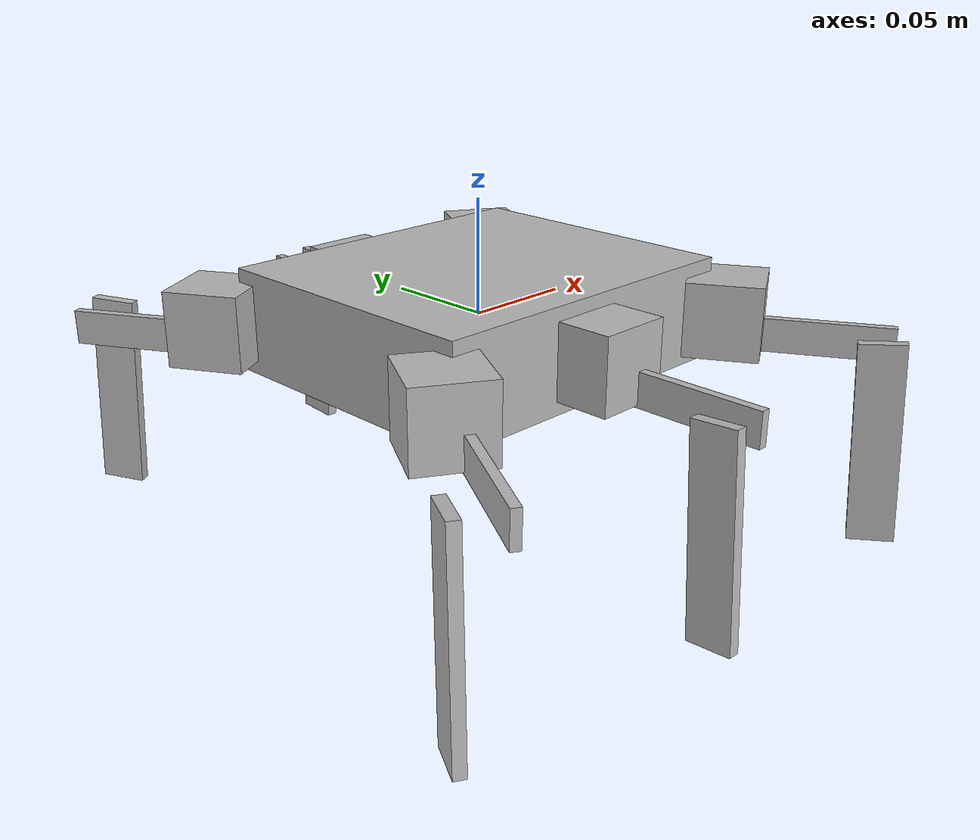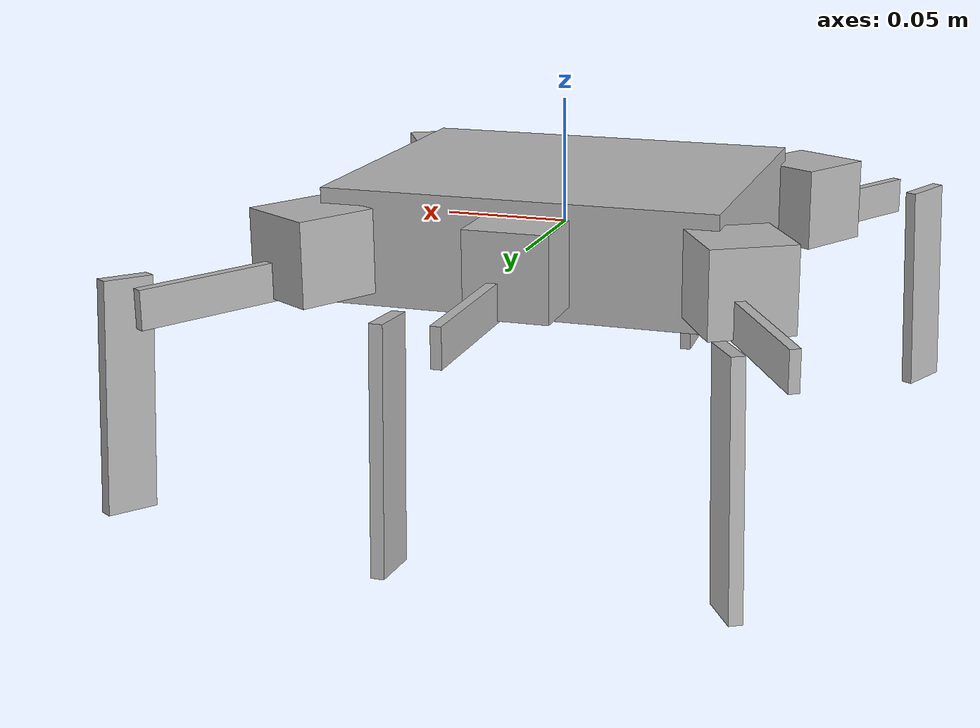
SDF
<sdf version='1.7'>
  <model name='hexapod'>
    <link name='base_link'>
      <inertial>
        <pose>0 -0 0 0 -0 0</pose>
        <mass>0.0306</mass>
        <inertia>
          <ixx>5.74625e-05</ixx>
          <ixy>0</ixy>
          <ixz>0</ixz>
          <iyy>7.4745e-05</iyy>
          <iyz>0</iyz>
          <izz>0.000122072</izz>
        </inertia>
      </inertial>
      <collision name='base_link_collision'>
        <pose>0 0 0 0 -0 0</pose>
        <geometry>
          <box>
            <size>0.155 0.13 0.045</size>
          </box>
        </geometry>
        <surface>
          <contact>
            <ode>
              <kp>1000</kp>
              <kd>1000</kd>
            </ode>
          </contact>
          <friction>
            <ode>
              <mu>1e+06</mu>
              <mu2>1e+06</mu2>
            </ode>
          </friction>
        </surface>
      </collision>
      <collision name='base_link_fixed_joint_lump__thorax_collision_1'>
        <pose>0 0 0 0 -0 0</pose>
        <geometry>
          <box>
            <size>0.155 0.13 0.045</size>
          </box>
        </geometry>
      </collision>
      <visual name='base_link_fixed_joint_lump__thorax_visual'>
        <pose>0 0 0 0 -0 0</pose>
        <geometry>
          <box>
            <size>0.155 0.13 0.045</size>
          </box>
        </geometry>
      </visual>
      <sensor name='contactsensor_sensor' type='contact'>
        <always_on>1</always_on>
        <contact>
          <collision>base_link_fixed_joint_lump__thorax_collision_1</collision>
          <topic>__default_topic__</topic>
        </contact>
        <plugin name='bumper0_plugin' filename='libgazebo_ros_bumper.so'>
          <bumperTopicName>contactsensor_state</bumperTopicName>
          <frameName>contactsensor_link</frameName>
        </plugin>
      </sensor>
    </link>
    <joint name='coxa_joint_l1' type='revolute'>
      <pose relative_to='base_link'>0.0775 0.065 0 0 -0 1.0472</pose>
      <parent>base_link</parent>
      <child>coxa_l1</child>
      <axis>
        <xyz>0 0 -1</xyz>
        <limit>
          <lower>-1.5</lower>
          <upper>1.5</upper>
          <effort>0.274586</effort>
          <velocity>3.1998e-05</velocity>
        </limit>
        <dynamics>
          <spring_reference>0</spring_reference>
          <spring_stiffness>0</spring_stiffness>
        </dynamics>
      </axis>
    </joint>
    <link name='coxa_l1'>
      <pose relative_to='coxa_joint_l1'>0 0 0 0 -0 0</pose>
      <inertial>
        <pose>0.008 0.005 0 0 -0 0</pose>
        <mass>0.01</mass>
        <inertia>
          <ixx>1.815e-06</ixx>
          <ixy>0</ixy>
          <ixz>0</ixz>
          <iyy>1.815e-06</iyy>
          <iyz>0</iyz>
          <izz>1.815e-06</izz>
        </inertia>
      </inertial>
      <collision name='coxa_l1_collision'>
        <pose>0.008 0.005 0 0 -0 0</pose>
        <geometry>
          <box>
            <size>0.033 0.033 0.033</size>
          </box>
        </geometry>
      </collision>
      <visual name='coxa_l1_visual'>
        <pose>0.008 0.005 0 0 -0 0</pose>
        <geometry>
          <box>
            <size>0.033 0.033 0.033</size>
          </box>
        </geometry>
      </visual>
    </link>
    <joint name='femur_joint_l1' type='revolute'>
      <pose relative_to='coxa_l1'>0.01 0 -0.01 -1.5708 0 0</pose>
      <parent>coxa_l1</parent>
      <child>femur_l1</child>
      <axis>
        <xyz>0 0 -1</xyz>
        <limit>
          <lower>-1.5</lower>
          <upper>1.5</upper>
          <effort>0.274586</effort>
          <velocity>3.1998e-05</velocity>
        </limit>
        <dynamics>
          <spring_reference>0</spring_reference>
          <spring_stiffness>0</spring_stiffness>
        </dynamics>
      </axis>
    </joint>
    <link name='femur_l1'>
      <pose relative_to='femur_joint_l1'>0 0 0 0 -0 0</pose>
      <inertial>
        <pose>0.035 0 0 0 -0 0</pose>
        <mass>0.01</mass>
        <inertia>
          <ixx>1.22167e-06</ixx>
          <ixy>0</ixy>
          <ixz>0</ixz>
          <iyy>5.1175e-06</iyy>
          <iyz>0</iyz>
          <izz>5.29167e-06</izz>
        </inertia>
      </inertial>
      <collision name='femur_l1_collision'>
        <pose>0.035 0 0 0 -0 0</pose>
        <geometry>
          <box>
            <size>0.07 0.015 0.004</size>
          </box>
        </geometry>
        <surface>
          <contact>
            <ode>
              <kp>1e+08</kp>
              <kd>1</kd>
              <min_depth>0.001</min_depth>
            </ode>
          </contact>
          <friction>
            <ode>
              <mu>10000.9</mu>
              <mu2>10000.9</mu2>
            </ode>
          </friction>
        </surface>
      </collision>
      <visual name='femur_l1_visual'>
        <pose>0.035 0 0 0 -0 0</pose>
        <geometry>
          <box>
            <size>0.07 0.015 0.004</size>
          </box>
        </geometry>
      </visual>
    </link>
    <joint name='tibia_joint_l1' type='revolute'>
      <pose relative_to='femur_l1'>0.066 0 0 3.14159 -0 1.5708</pose>
      <parent>femur_l1</parent>
      <child>tibia_l1</child>
      <axis>
        <xyz>0 0 1</xyz>
        <limit>
          <lower>-1.5</lower>
          <upper>1.5</upper>
          <effort>0.274586</effort>
          <velocity>3.1998e-05</velocity>
        </limit>
        <dynamics>
          <spring_reference>0</spring_reference>
          <spring_stiffness>0</spring_stiffness>
        </dynamics>
      </axis>
    </joint>
    <link name='tibia_l1'>
      <pose relative_to='tibia_joint_l1'>0 0 0 0 -0 0</pose>
      <inertial>
        <pose>0.038 0 0.02 0 -0 0.06</pose>
        <mass>0.01</mass>
        <inertia>
          <ixx>2.04167e-06</ixx>
          <ixy>0</ixy>
          <ixz>0</ixz>
          <iyy>8.45833e-06</iyy>
          <iyz>0</iyz>
          <izz>8.77083e-06</izz>
        </inertia>
      </inertial>
      <collision name='tibia_l1_collision_collision'>
        <pose>0.038 0 0.02 0 -0 0.06</pose>
        <geometry>
          <box>
            <size>0.09 0.02 0.005</size>
          </box>
        </geometry>
      </collision>
      <visual name='tibia_l1_visual'>
        <pose>0.038 0 0.02 0 -0 0.06</pose>
        <geometry>
          <box>
            <size>0.09 0.02 0.005</size>
          </box>
        </geometry>
      </visual>
    </link>
    <joint name='coxa_joint_l2' type='revolute'>
      <pose relative_to='base_link'>0 0.065 0 0 -0 1.5708</pose>
      <parent>base_link</parent>
      <child>coxa_l2</child>
      <axis>
        <xyz>0 0 -1</xyz>
        <limit>
          <lower>-1.5</lower>
          <upper>1.5</upper>
          <effort>0.274586</effort>
          <velocity>3.1998e-05</velocity>
        </limit>
        <dynamics>
          <spring_reference>0</spring_reference>
          <spring_stiffness>0</spring_stiffness>
        </dynamics>
      </axis>
    </joint>
    <link name='coxa_l2'>
      <pose relative_to='coxa_joint_l2'>0 0 0 0 -0 0</pose>
      <inertial>
        <pose>0.008 0.005 0 0 -0 0</pose>
        <mass>0.01</mass>
        <inertia>
          <ixx>1.815e-06</ixx>
          <ixy>0</ixy>
          <ixz>0</ixz>
          <iyy>1.815e-06</iyy>
          <iyz>0</iyz>
          <izz>1.815e-06</izz>
        </inertia>
      </inertial>
      <collision name='coxa_l2_collision'>
        <pose>0.008 0.005 0 0 -0 0</pose>
        <geometry>
          <box>
            <size>0.033 0.033 0.033</size>
          </box>
        </geometry>
      </collision>
      <visual name='coxa_l2_visual'>
        <pose>0.008 0.005 0 0 -0 0</pose>
        <geometry>
          <box>
            <size>0.033 0.033 0.033</size>
          </box>
        </geometry>
      </visual>
    </link>
    <joint name='femur_joint_l2' type='revolute'>
      <pose relative_to='coxa_l2'>0.01 0 -0.01 -1.5708 0 0</pose>
      <parent>coxa_l2</parent>
      <child>femur_l2</child>
      <axis>
        <xyz>0 0 -1</xyz>
        <limit>
          <lower>-1.5</lower>
          <upper>1.5</upper>
          <effort>0.274586</effort>
          <velocity>3.1998e-05</velocity>
        </limit>
        <dynamics>
          <spring_reference>0</spring_reference>
          <spring_stiffness>0</spring_stiffness>
        </dynamics>
      </axis>
    </joint>
    <link name='femur_l2'>
      <pose relative_to='femur_joint_l2'>0 0 0 0 -0 0</pose>
      <inertial>
        <pose>0.035 0 0 0 -0 0</pose>
        <mass>0.01</mass>
        <inertia>
          <ixx>1.22167e-06</ixx>
          <ixy>0</ixy>
          <ixz>0</ixz>
          <iyy>5.1175e-06</iyy>
          <iyz>0</iyz>
          <izz>5.29167e-06</izz>
        </inertia>
      </inertial>
      <collision name='femur_l2_collision'>
        <pose>0.035 0 0 0 -0 0</pose>
        <geometry>
          <box>
            <size>0.07 0.015 0.004</size>
          </box>
        </geometry>
        <surface>
          <contact>
            <ode>
              <kp>1e+08</kp>
              <kd>1</kd>
              <min_depth>0.001</min_depth>
            </ode>
          </contact>
          <friction>
            <ode>
              <mu>10000.9</mu>
              <mu2>10000.9</mu2>
            </ode>
          </friction>
        </surface>
      </collision>
      <visual name='femur_l2_visual'>
        <pose>0.035 0 0 0 -0 0</pose>
        <geometry>
          <box>
            <size>0.07 0.015 0.004</size>
          </box>
        </geometry>
      </visual>
    </link>
    <joint name='tibia_joint_l2' type='revolute'>
      <pose relative_to='femur_l2'>0.066 0 0 3.14159 -0 1.5708</pose>
      <parent>femur_l2</parent>
      <child>tibia_l2</child>
      <axis>
        <xyz>0 0 1</xyz>
        <limit>
          <lower>-1.5</lower>
          <upper>1.5</upper>
          <effort>0.274586</effort>
          <velocity>3.1998e-05</velocity>
        </limit>
        <dynamics>
          <spring_reference>0</spring_reference>
          <spring_stiffness>0</spring_stiffness>
        </dynamics>
      </axis>
    </joint>
    <link name='tibia_l2'>
      <pose relative_to='tibia_joint_l2'>0 0 0 0 -0 0</pose>
      <inertial>
        <pose>0.038 0 0.02 0 -0 0.06</pose>
        <mass>0.01</mass>
        <inertia>
          <ixx>2.04167e-06</ixx>
          <ixy>0</ixy>
          <ixz>0</ixz>
          <iyy>8.45833e-06</iyy>
          <iyz>0</iyz>
          <izz>8.77083e-06</izz>
        </inertia>
      </inertial>
      <collision name='tibia_l2_collision_collision'>
        <pose>0.038 0 0.02 0 -0 0.06</pose>
        <geometry>
          <box>
            <size>0.09 0.02 0.005</size>
          </box>
        </geometry>
      </collision>
      <visual name='tibia_l2_visual'>
        <pose>0.038 0 0.02 0 -0 0.06</pose>
        <geometry>
          <box>
            <size>0.09 0.02 0.005</size>
          </box>
        </geometry>
      </visual>
    </link>
    <joint name='coxa_joint_l3' type='revolute'>
      <pose relative_to='base_link'>-0.0775 0.065 0 0 -0 2.0944</pose>
      <parent>base_link</parent>
      <child>coxa_l3</child>
      <axis>
        <xyz>0 0 -1</xyz>
        <limit>
          <lower>-1.5</lower>
          <upper>1.5</upper>
          <effort>0.274586</effort>
          <velocity>3.1998e-05</velocity>
        </limit>
        <dynamics>
          <spring_reference>0</spring_reference>
          <spring_stiffness>0</spring_stiffness>
        </dynamics>
      </axis>
    </joint>
    <link name='coxa_l3'>
      <pose relative_to='coxa_joint_l3'>0 0 0 0 -0 0</pose>
      <inertial>
        <pose>0.008 0.005 0 0 -0 0</pose>
        <mass>0.01</mass>
        <inertia>
          <ixx>1.815e-06</ixx>
          <ixy>0</ixy>
          <ixz>0</ixz>
          <iyy>1.815e-06</iyy>
          <iyz>0</iyz>
          <izz>1.815e-06</izz>
        </inertia>
      </inertial>
      <collision name='coxa_l3_collision'>
        <pose>0.008 0.005 0 0 -0 0</pose>
        <geometry>
          <box>
            <size>0.033 0.033 0.033</size>
          </box>
        </geometry>
      </collision>
      <visual name='coxa_l3_visual'>
        <pose>0.008 0.005 0 0 -0 0</pose>
        <geometry>
          <box>
            <size>0.033 0.033 0.033</size>
          </box>
        </geometry>
      </visual>
    </link>
    <joint name='femur_joint_l3' type='revolute'>
      <pose relative_to='coxa_l3'>0.01 0 -0.01 -1.5708 0 0</pose>
      <parent>coxa_l3</parent>
      <child>femur_l3</child>
      <axis>
        <xyz>0 0 -1</xyz>
        <limit>
          <lower>-1.5</lower>
          <upper>1.5</upper>
          <effort>0.274586</effort>
          <velocity>3.1998e-05</velocity>
        </limit>
        <dynamics>
          <spring_reference>0</spring_reference>
          <spring_stiffness>0</spring_stiffness>
        </dynamics>
      </axis>
    </joint>
    <link name='femur_l3'>
      <pose relative_to='femur_joint_l3'>0 0 0 0 -0 0</pose>
      <inertial>
        <pose>0.035 0 0 0 -0 0</pose>
        <mass>0.01</mass>
        <inertia>
          <ixx>1.22167e-06</ixx>
          <ixy>0</ixy>
          <ixz>0</ixz>
          <iyy>5.1175e-06</iyy>
          <iyz>0</iyz>
          <izz>5.29167e-06</izz>
        </inertia>
      </inertial>
      <collision name='femur_l3_collision'>
        <pose>0.035 0 0 0 -0 0</pose>
        <geometry>
          <box>
            <size>0.07 0.015 0.004</size>
          </box>
        </geometry>
        <surface>
          <contact>
            <ode>
              <kp>1e+08</kp>
              <kd>1</kd>
              <min_depth>0.001</min_depth>
            </ode>
          </contact>
          <friction>
            <ode>
              <mu>10000.9</mu>
              <mu2>10000.9</mu2>
            </ode>
          </friction>
        </surface>
      </collision>
      <visual name='femur_l3_visual'>
        <pose>0.035 0 0 0 -0 0</pose>
        <geometry>
          <box>
            <size>0.07 0.015 0.004</size>
          </box>
        </geometry>
      </visual>
    </link>
    <joint name='tibia_joint_l3' type='revolute'>
      <pose relative_to='femur_l3'>0.066 0 0 3.14159 -0 1.5708</pose>
      <parent>femur_l3</parent>
      <child>tibia_l3</child>
      <axis>
        <xyz>0 0 1</xyz>
        <limit>
          <lower>-1.5</lower>
          <upper>1.5</upper>
          <effort>0.274586</effort>
          <velocity>3.1998e-05</velocity>
        </limit>
        <dynamics>
          <spring_reference>0</spring_reference>
          <spring_stiffness>0</spring_stiffness>
        </dynamics>
      </axis>
    </joint>
    <link name='tibia_l3'>
      <pose relative_to='tibia_joint_l3'>0 0 0 0 -0 0</pose>
      <inertial>
        <pose>0.038 0 0.02 0 -0 0.06</pose>
        <mass>0.01</mass>
        <inertia>
          <ixx>2.04167e-06</ixx>
          <ixy>0</ixy>
          <ixz>0</ixz>
          <iyy>8.45833e-06</iyy>
          <iyz>0</iyz>
          <izz>8.77083e-06</izz>
        </inertia>
      </inertial>
      <collision name='tibia_l3_collision_collision'>
        <pose>0.038 0 0.02 0 -0 0.06</pose>
        <geometry>
          <box>
            <size>0.09 0.02 0.005</size>
          </box>
        </geometry>
      </collision>
      <visual name='tibia_l3_visual'>
        <pose>0.038 0 0.02 0 -0 0.06</pose>
        <geometry>
          <box>
            <size>0.09 0.02 0.005</size>
          </box>
        </geometry>
      </visual>
    </link>
    <joint name='coxa_joint_r1' type='revolute'>
      <pose relative_to='base_link'>0.0775 -0.065 0 0 0 -1.0472</pose>
      <parent>base_link</parent>
      <child>coxa_r1</child>
      <axis>
        <xyz>0 0 -1</xyz>
        <limit>
          <lower>-1.5</lower>
          <upper>1.5</upper>
          <effort>0.274586</effort>
          <velocity>3.1998e-05</velocity>
        </limit>
        <dynamics>
          <spring_reference>0</spring_reference>
          <spring_stiffness>0</spring_stiffness>
        </dynamics>
      </axis>
    </joint>
    <link name='coxa_r1'>
      <pose relative_to='coxa_joint_r1'>0 0 0 0 -0 0</pose>
      <inertial>
        <pose>0.008 -0.005 0 0 -0 0</pose>
        <mass>0.01</mass>
        <inertia>
          <ixx>1.815e-06</ixx>
          <ixy>0</ixy>
          <ixz>0</ixz>
          <iyy>1.815e-06</iyy>
          <iyz>0</iyz>
          <izz>1.815e-06</izz>
        </inertia>
      </inertial>
      <collision name='coxa_r1_collision'>
        <pose>0.008 -0.005 0 0 -0 0</pose>
        <geometry>
          <box>
            <size>0.033 0.033 0.033</size>
          </box>
        </geometry>
      </collision>
      <visual name='coxa_r1_visual'>
        <pose>0.008 -0.005 0 0 -0 0</pose>
        <geometry>
          <box>
            <size>0.033 0.033 0.033</size>
          </box>
        </geometry>
      </visual>
    </link>
    <joint name='femur_joint_r1' type='revolute'>
      <pose relative_to='coxa_r1'>0.01 0 -0.01 -1.5708 0 0</pose>
      <parent>coxa_r1</parent>
      <child>femur_r1</child>
      <axis>
        <xyz>0 0 -1</xyz>
        <limit>
          <lower>-1.5</lower>
          <upper>1.5</upper>
          <effort>0.274586</effort>
          <velocity>3.1998e-05</velocity>
        </limit>
        <dynamics>
          <spring_reference>0</spring_reference>
          <spring_stiffness>0</spring_stiffness>
        </dynamics>
      </axis>
    </joint>
    <link name='femur_r1'>
      <pose relative_to='femur_joint_r1'>0 0 0 0 -0 0</pose>
      <inertial>
        <pose>0.035 0 0 0 -0 0</pose>
        <mass>0.01</mass>
        <inertia>
          <ixx>1.22167e-06</ixx>
          <ixy>0</ixy>
          <ixz>0</ixz>
          <iyy>5.1175e-06</iyy>
          <iyz>0</iyz>
          <izz>5.29167e-06</izz>
        </inertia>
      </inertial>
      <collision name='femur_r1_collision'>
        <pose>0.035 0 0 0 -0 0</pose>
        <geometry>
          <box>
            <size>0.07 0.015 0.004</size>
          </box>
        </geometry>
        <surface>
          <contact>
            <ode>
              <kp>1e+08</kp>
              <kd>1</kd>
              <min_depth>0.001</min_depth>
            </ode>
          </contact>
          <friction>
            <ode>
              <mu>10000.9</mu>
              <mu2>10000.9</mu2>
            </ode>
          </friction>
        </surface>
      </collision>
      <visual name='femur_r1_visual'>
        <pose>0.035 0 0 0 -0 0</pose>
        <geometry>
          <box>
            <size>0.07 0.015 0.004</size>
          </box>
        </geometry>
      </visual>
    </link>
    <joint name='tibia_joint_r1' type='revolute'>
      <pose relative_to='femur_r1'>0.066 0 0 3.14159 -0 1.5708</pose>
      <parent>femur_r1</parent>
      <child>tibia_r1</child>
      <axis>
        <xyz>0 0 1</xyz>
        <limit>
          <lower>-1.5</lower>
          <upper>1.5</upper>
          <effort>0.274586</effort>
          <velocity>3.1998e-05</velocity>
        </limit>
        <dynamics>
          <spring_reference>0</spring_reference>
          <spring_stiffness>0</spring_stiffness>
        </dynamics>
      </axis>
    </joint>
    <link name='tibia_r1'>
      <pose relative_to='tibia_joint_r1'>0 0 0 0 -0 0</pose>
      <inertial>
        <pose>0.038 0 0.02 0 -0 0.06</pose>
        <mass>0.01</mass>
        <inertia>
          <ixx>2.04167e-06</ixx>
          <ixy>0</ixy>
          <ixz>0</ixz>
          <iyy>8.45833e-06</iyy>
          <iyz>0</iyz>
          <izz>8.77083e-06</izz>
        </inertia>
      </inertial>
      <collision name='tibia_r1_collision_collision'>
        <pose>0.038 0 0.02 0 -0 0.06</pose>
        <geometry>
          <box>
            <size>0.09 0.02 0.005</size>
          </box>
        </geometry>
      </collision>
      <visual name='tibia_r1_visual'>
        <pose>0.038 0 0.02 0 -0 0.06</pose>
        <geometry>
          <box>
            <size>0.09 0.02 0.005</size>
          </box>
        </geometry>
      </visual>
    </link>
    <joint name='coxa_joint_r2' type='revolute'>
      <pose relative_to='base_link'>0 -0.065 0 0 0 -1.5708</pose>
      <parent>base_link</parent>
      <child>coxa_r2</child>
      <axis>
        <xyz>0 0 -1</xyz>
        <limit>
          <lower>-1.5</lower>
          <upper>1.5</upper>
          <effort>0.274586</effort>
          <velocity>3.1998e-05</velocity>
        </limit>
        <dynamics>
          <spring_reference>0</spring_reference>
          <spring_stiffness>0</spring_stiffness>
        </dynamics>
      </axis>
    </joint>
    <link name='coxa_r2'>
      <pose relative_to='coxa_joint_r2'>0 0 0 0 -0 0</pose>
      <inertial>
        <pose>0.008 -0.005 0 0 -0 0</pose>
        <mass>0.01</mass>
        <inertia>
          <ixx>1.815e-06</ixx>
          <ixy>0</ixy>
          <ixz>0</ixz>
          <iyy>1.815e-06</iyy>
          <iyz>0</iyz>
          <izz>1.815e-06</izz>
        </inertia>
      </inertial>
      <collision name='coxa_r2_collision'>
        <pose>0.008 -0.005 0 0 -0 0</pose>
        <geometry>
          <box>
            <size>0.033 0.033 0.033</size>
          </box>
        </geometry>
      </collision>
      <visual name='coxa_r2_visual'>
        <pose>0.008 -0.005 0 0 -0 0</pose>
        <geometry>
          <box>
            <size>0.033 0.033 0.033</size>
          </box>
        </geometry>
      </visual>
    </link>
    <joint name='femur_joint_r2' type='revolute'>
      <pose relative_to='coxa_r2'>0.01 0 -0.01 -1.5708 0 0</pose>
      <parent>coxa_r2</parent>
      <child>femur_r2</child>
      <axis>
        <xyz>0 0 -1</xyz>
        <limit>
          <lower>-1.5</lower>
          <upper>1.5</upper>
          <effort>0.274586</effort>
          <velocity>3.1998e-05</velocity>
        </limit>
        <dynamics>
          <spring_reference>0</spring_reference>
          <spring_stiffness>0</spring_stiffness>
        </dynamics>
      </axis>
    </joint>
    <link name='femur_r2'>
      <pose relative_to='femur_joint_r2'>0 0 0 0 -0 0</pose>
      <inertial>
        <pose>0.035 0 0 0 -0 0</pose>
        <mass>0.01</mass>
        <inertia>
          <ixx>1.22167e-06</ixx>
          <ixy>0</ixy>
          <ixz>0</ixz>
          <iyy>5.1175e-06</iyy>
          <iyz>0</iyz>
          <izz>5.29167e-06</izz>
        </inertia>
      </inertial>
      <collision name='femur_r2_collision'>
        <pose>0.035 0 0 0 -0 0</pose>
        <geometry>
          <box>
            <size>0.07 0.015 0.004</size>
          </box>
        </geometry>
        <surface>
          <contact>
            <ode>
              <kp>1e+08</kp>
              <kd>1</kd>
              <min_depth>0.001</min_depth>
            </ode>
          </contact>
          <friction>
            <ode>
              <mu>10000.9</mu>
              <mu2>10000.9</mu2>
            </ode>
          </friction>
        </surface>
      </collision>
      <visual name='femur_r2_visual'>
        <pose>0.035 0 0 0 -0 0</pose>
        <geometry>
          <box>
            <size>0.07 0.015 0.004</size>
          </box>
        </geometry>
      </visual>
    </link>
    <joint name='tibia_joint_r2' type='revolute'>
      <pose relative_to='femur_r2'>0.066 0 0 3.14159 -0 1.5708</pose>
      <parent>femur_r2</parent>
      <child>tibia_r2</child>
      <axis>
        <xyz>0 0 1</xyz>
        <limit>
          <lower>-1.5</lower>
          <upper>1.5</upper>
          <effort>0.274586</effort>
          <velocity>3.1998e-05</velocity>
        </limit>
        <dynamics>
          <spring_reference>0</spring_reference>
          <spring_stiffness>0</spring_stiffness>
        </dynamics>
      </axis>
    </joint>
    <link name='tibia_r2'>
      <pose relative_to='tibia_joint_r2'>0 0 0 0 -0 0</pose>
      <inertial>
        <pose>0.038 0 0.02 0 -0 0.06</pose>
        <mass>0.01</mass>
        <inertia>
          <ixx>2.04167e-06</ixx>
          <ixy>0</ixy>
          <ixz>0</ixz>
          <iyy>8.45833e-06</iyy>
          <iyz>0</iyz>
          <izz>8.77083e-06</izz>
        </inertia>
      </inertial>
      <collision name='tibia_r2_collision_collision'>
        <pose>0.038 0 0.02 0 -0 0.06</pose>
        <geometry>
          <box>
            <size>0.09 0.02 0.005</size>
          </box>
        </geometry>
      </collision>
      <visual name='tibia_r2_visual'>
        <pose>0.038 0 0.02 0 -0 0.06</pose>
        <geometry>
          <box>
            <size>0.09 0.02 0.005</size>
          </box>
        </geometry>
      </visual>
    </link>
    <joint name='coxa_joint_r3' type='revolute'>
      <pose relative_to='base_link'>-0.0775 -0.065 0 0 0 -2.0944</pose>
      <parent>base_link</parent>
      <child>coxa_r3</child>
      <axis>
        <xyz>0 0 -1</xyz>
        <limit>
          <lower>-1.5</lower>
          <upper>1.5</upper>
          <effort>0.274586</effort>
          <velocity>3.1998e-05</velocity>
        </limit>
        <dynamics>
          <spring_reference>0</spring_reference>
          <spring_stiffness>0</spring_stiffness>
        </dynamics>
      </axis>
    </joint>
    <link name='coxa_r3'>
      <pose relative_to='coxa_joint_r3'>0 0 0 0 -0 0</pose>
      <inertial>
        <pose>0.008 -0.005 0 0 -0 0</pose>
        <mass>0.01</mass>
        <inertia>
          <ixx>1.815e-06</ixx>
          <ixy>0</ixy>
          <ixz>0</ixz>
          <iyy>1.815e-06</iyy>
          <iyz>0</iyz>
          <izz>1.815e-06</izz>
        </inertia>
      </inertial>
      <collision name='coxa_r3_collision'>
        <pose>0.008 -0.005 0 0 -0 0</pose>
        <geometry>
          <box>
            <size>0.033 0.033 0.033</size>
          </box>
        </geometry>
      </collision>
      <visual name='coxa_r3_visual'>
        <pose>0.008 -0.005 0 0 -0 0</pose>
        <geometry>
          <box>
            <size>0.033 0.033 0.033</size>
          </box>
        </geometry>
      </visual>
    </link>
    <joint name='femur_joint_r3' type='revolute'>
      <pose relative_to='coxa_r3'>0.01 0 -0.01 -1.5708 0 0</pose>
      <parent>coxa_r3</parent>
      <child>femur_r3</child>
      <axis>
        <xyz>0 0 -1</xyz>
        <limit>
          <lower>-1.5</lower>
          <upper>1.5</upper>
          <effort>0.274586</effort>
          <velocity>3.1998e-05</velocity>
        </limit>
        <dynamics>
          <spring_reference>0</spring_reference>
          <spring_stiffness>0</spring_stiffness>
        </dynamics>
      </axis>
    </joint>
    <link name='femur_r3'>
      <pose relative_to='femur_joint_r3'>0 0 0 0 -0 0</pose>
      <inertial>
        <pose>0.035 0 0 0 -0 0</pose>
        <mass>0.01</mass>
        <inertia>
          <ixx>1.22167e-06</ixx>
          <ixy>0</ixy>
          <ixz>0</ixz>
          <iyy>5.1175e-06</iyy>
          <iyz>0</iyz>
          <izz>5.29167e-06</izz>
        </inertia>
      </inertial>
      <collision name='femur_r3_collision'>
        <pose>0.035 0 0 0 -0 0</pose>
        <geometry>
          <box>
            <size>0.07 0.015 0.004</size>
          </box>
        </geometry>
        <surface>
          <contact>
            <ode>
              <kp>1e+08</kp>
              <kd>1</kd>
              <min_depth>0.001</min_depth>
            </ode>
          </contact>
          <friction>
            <ode>
              <mu>10000.9</mu>
              <mu2>10000.9</mu2>
            </ode>
          </friction>
        </surface>
      </collision>
      <visual name='femur_r3_visual'>
        <pose>0.035 0 0 0 -0 0</pose>
        <geometry>
          <box>
            <size>0.07 0.015 0.004</size>
          </box>
        </geometry>
      </visual>
    </link>
    <joint name='tibia_joint_r3' type='revolute'>
      <pose relative_to='femur_r3'>0.066 0 0 3.14159 -0 1.5708</pose>
      <parent>femur_r3</parent>
      <child>tibia_r3</child>
      <axis>
        <xyz>0 0 1</xyz>
        <limit>
          <lower>-1.5</lower>
          <upper>1.5</upper>
          <effort>0.274586</effort>
          <velocity>3.1998e-05</velocity>
        </limit>
        <dynamics>
          <spring_reference>0</spring_reference>
          <spring_stiffness>0</spring_stiffness>
        </dynamics>
      </axis>
    </joint>
    <link name='tibia_r3'>
      <pose relative_to='tibia_joint_r3'>0 0 0 0 -0 0</pose>
      <inertial>
        <pose>0.038 0 0.02 0 -0 0.06</pose>
        <mass>0.01</mass>
        <inertia>
          <ixx>2.04167e-06</ixx>
          <ixy>0</ixy>
          <ixz>0</ixz>
          <iyy>8.45833e-06</iyy>
          <iyz>0</iyz>
          <izz>8.77083e-06</izz>
        </inertia>
      </inertial>
      <collision name='tibia_r3_collision_collision'>
        <pose>0.038 0 0.02 0 -0 0.06</pose>
        <geometry>
          <box>
            <size>0.09 0.02 0.005</size>
          </box>
        </geometry>
      </collision>
      <visual name='tibia_r3_visual'>
        <pose>0.038 0 0.02 0 -0 0.06</pose>
        <geometry>
          <box>
            <size>0.09 0.02 0.005</size>
          </box>
        </geometry>
      </visual>
    </link>
    <plugin name='gazebo_ros_control' filename='libgazebo_ros_control.so'>
      <robotNamespace>/hexapod</robotNamespace>
    </plugin>
    <self_collide>1</self_collide>
    <plugin name='p3d_base_controller' filename='libgazebo_ros_p3d.so'>
      <alwaysOn>1</alwaysOn>
      <bodyName>base_link</bodyName>
      <topicName>odom</topicName>
      <gaussianNoise>0.01</gaussianNoise>
      <frameName>world</frameName>
      <xyzOffsets>0 0 0</xyzOffsets>
      <rpyOffsets>0 0 0</rpyOffsets>
    </plugin>
    <static>0</static>
    <plugin name='gazebo_ros_imu_controller' filename='libgazebo_ros_imu.so'>
      <robotNamespace>/hexapod</robotNamespace>
      <topicName>imu/data</topicName>
      <serviceName>imu/service</serviceName>
      <bodyName>base_link</bodyName>
      <gaussianNoise>0</gaussianNoise>
      <rpyOffsets>0 0 0</rpyOffsets>
      <alwaysOn>1</alwaysOn>
      <gaussianNoise>0</gaussianNoise>
    </plugin>
  </model>
</sdf>
